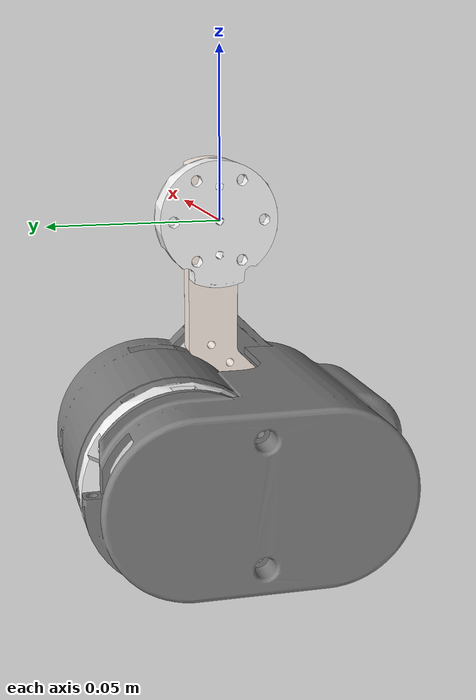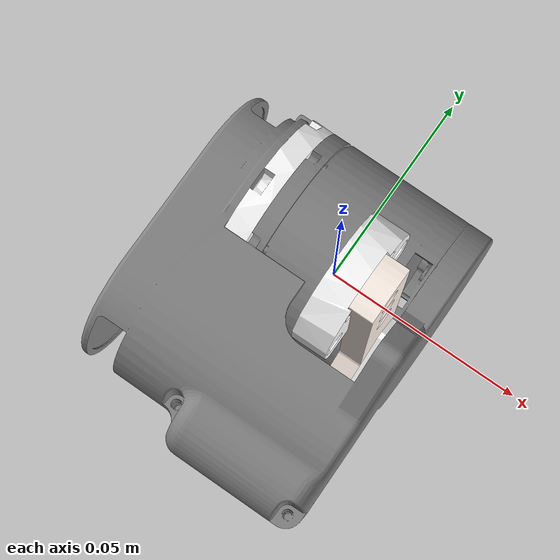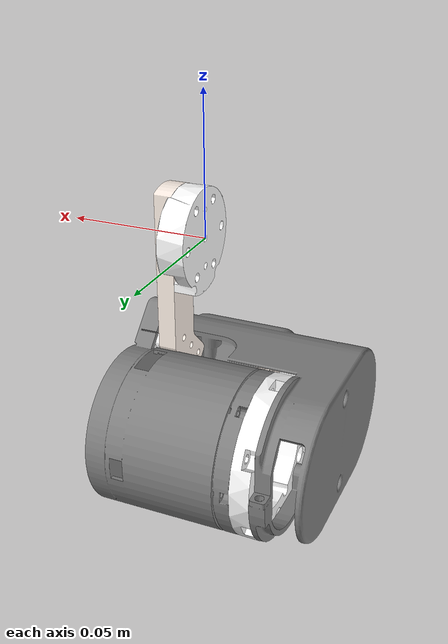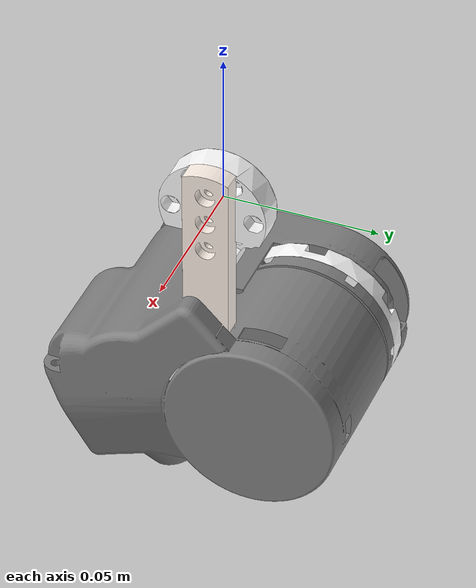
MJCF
<mujoco model="ee_base_link_obj">
  <asset>
    <mesh name="ee_base_link_00" file="ee_base_link_00.obj"/>
    <mesh name="ee_base_link_01" file="ee_base_link_01.obj"/>
    <mesh name="ee_base_link_02" file="ee_base_link_02.obj"/>
    <material name="ee_base_link_00_mat" rgba="1.000000 0.949020 0.909804 1.000000"/>
    <material name="ee_base_link_01_mat" rgba="0.501961 0.501961 0.501961 1.000000"/>
    <material name="ee_base_link_02_mat" rgba="1.000000 1.000000 1.000000 1.000000"/>
  </asset>
  <worldbody>
    <body name="ee_base_link_obj">
      <geom type="mesh" mesh="ee_base_link_00" material="ee_base_link_00_mat" contype="0" conaffinity="0" group="1"/>
      <geom type="mesh" mesh="ee_base_link_01" material="ee_base_link_01_mat" contype="0" conaffinity="0" group="1"/>
      <geom type="mesh" mesh="ee_base_link_02" material="ee_base_link_02_mat" contype="0" conaffinity="0" group="1"/>
    </body>
  </worldbody>
</mujoco>
